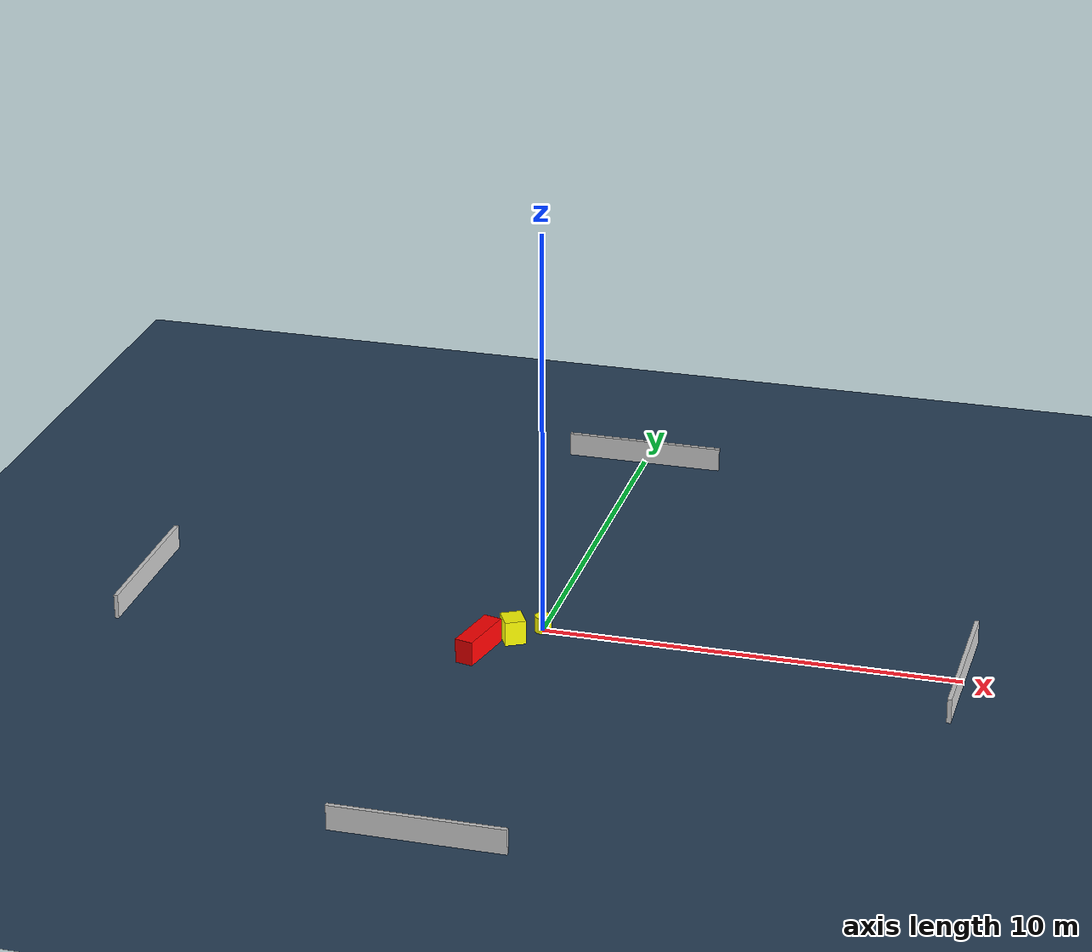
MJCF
<?xml version="1.0" ?>
<mujoco model="generated_environment">
  <option timestep="0.01" integrator="RK4" cone="elliptic"/>
  <default>
    <geom density="1"/>
  </default>
  <asset>
    <texture builtin="gradient" height="3072" name="skybox" rgb1="0.3 0.5 0.7" rgb2="0 0 0" type="skybox" width="512"/>
    <texture builtin="checker" height="300" name="groundplane" rgb1="0.2 0.3 0.4" rgb2="0.1 0.2 0.3" type="2d" width="300"/>
    <material name="groundplane" reflectance="0.2" texrepeat="5 5" texture="groundplane"/>
  </asset>
  <worldbody>
    <light dir="0 0 -1" directional="true" pos="0 0 1.5"/>
    <geom condim="3" friction="0.5 0.005 0.001" material="groundplane" name="floor" pos="0 0 0" size="0 0 0.05" type="plane"/>
    <body name="walls">
      <geom name="wall_1" condim="4" pos="-10.0 0.0 0.3" rgba="0.800000011920929 0.800000011920929 0.800000011920929 1.0" size="0.05 2.0 0.3" type="box"/>
      <geom name="wall_2" condim="4" pos="10.0 0.0 0.3" rgba="0.800000011920929 0.800000011920929 0.800000011920929 1.0" size="0.05 2.0 0.3" type="box"/>
      <geom name="wall_3" condim="4" pos="0.0 -10.0 0.3" rgba="0.800000011920929 0.800000011920929 0.800000011920929 1.0" size="2.0 0.05 0.3" type="box"/>
      <geom name="wall_4" condim="4" pos="0.0 10.0 0.3" rgba="0.800000011920929 0.800000011920929 0.800000011920929 1.0" size="2.0 0.05 0.3" type="box"/>
    </body>
    <body name="robot">
      <joint name="joint_x" type="slide" pos="0 0 0" axis="1 0 0"/>
      <joint name="joint_y" type="slide" pos="0 0 0" axis="0 1 0"/>
      <geom name="robot" type="cylinder" pos="0.0 0.0 0.2" size="0.2 0.2 0.0" mass="5.0" friction="1.0 0.005 0.0001" condim="4" rgba="1.0 1.0 0.0 1.0"/>
    </body>
    <body name="obstacle_1_movable">
      <geom name="obstacle_1_movable" condim="4" pos="-0.560504834729757 -0.6289529247817744 0.3" euler="0 0 28.64753776314004" friction="0.0 0.005 0.001" rgba="1.0 1.0 0.0 1.0" size="0.25110853138506706 0.28035686835617285 0.3" type="box" mass="0.1"/>
      <joint type="free"/>
    </body>
    <body name="obstacle_2_static">
      <geom name="obstacle_2_static" condim="4" pos="-1.1757604155074963 -1.4180612870001856 0.3" euler="0 0 166.93341051852283" friction="0.0 0.005 0.001" rgba="1.0 0.0 0.0 1.0" size="0.21977018292742098 0.7024076755825184 0.3" type="box"/>
    </body>
  </worldbody>
  <actuator>
    <motor name="actuator_x" joint="joint_x" gear="1" ctrlrange="-1 1"/>
    <motor name="actuator_y" joint="joint_y" gear="1" ctrlrange="-1 1"/>
  </actuator>
</mujoco>
